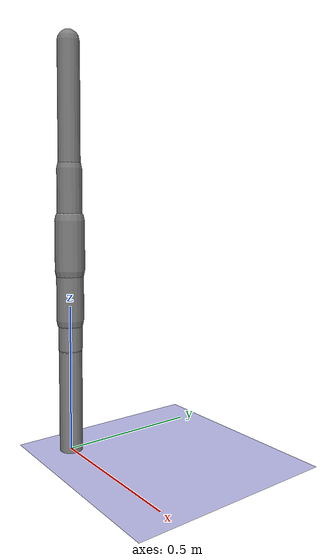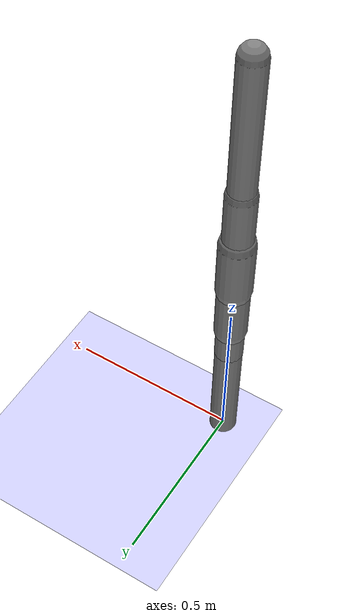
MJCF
<?xml version='1.0' encoding='UTF-8'?>
<mujoco model="robot_model">
  <worldbody>
    <light name="light" pos="0 -3 10" dir="0 0.5 -1" diffuse=".8 .8 .8" specular="0.1 0.1 0.1"/>
    <geom name="floor" type="plane" size="10.0 10.0 0.1" pos="0 0 0" rgba="0.8 0.8 1 1" contype="2" conaffinity="1"/>
    <body name="limb0" pos="0 0 0">
      <geom type="capsule" fromto="0 0 0 0 0 0.6" size="0.04" density="400.0" contype="1" conaffinity="2"/>
      <site type="sphere" size="0.01" name="limb0_site0" pos="0 0 0.3147693756185692"/>
      <freejoint name="limb0_root"/>
      <body name="limb1" pos="0 0 0.3147693756185692">
        <geom type="capsule" fromto="0 0 0 0 0 0.22374799158173964" size="0.029119176085318315" density="452.1334187822219" contype="1" conaffinity="2"/>
        <site type="sphere" size="0.01" name="limb1_site0" pos="0 0 0.13959699440114137"/>
        <site type="sphere" size="0.01" name="limb1_site1" pos="0 0 0.039350103148185524"/>
        <site type="sphere" size="0.01" name="limb1_site2" pos="0 0 0.19102740956826053"/>
        <body name="limb2" pos="0 0 0.13959699440114137">
          <geom type="capsule" fromto="0 0 0 0 0 0.32331157919001374" size="0.04703069767789839" density="709.8359320414992" contype="1" conaffinity="2"/>
          <site type="sphere" size="0.01" name="limb2_site0" pos="0 0 0.17074957483882156"/>
          <body name="limb3" pos="0 0 0.17074957483882156">
            <geom type="capsule" fromto="0 0 0 0 0 0.16986396870629186" size="0.051375428870848665" density="410.9469482212125" contype="1" conaffinity="2"/>
            <joint name="joint_limb2_limb3_0" type="hinge" axis="0 1 0" range="-41.79162224515133 41.79162224515133" damping="5.0"/>
          </body>
          <joint name="joint_limb1_limb2_0" type="hinge" axis="0 1 0" range="-82.7424809592319 82.7424809592319" damping="5.0"/>
        </body>
        <body name="limb4" pos="0 0 0.039350103148185524">
          <geom type="capsule" fromto="0 0 0 0 0 0.31506302920139795" size="0.04118448157082622" density="1024.7729175917539" contype="1" conaffinity="2"/>
          <site type="sphere" size="0.01" name="limb4_site0" pos="0 0 0.31490592373299237"/>
          <body name="limb5" pos="0 0 0.31490592373299237">
            <geom type="capsule" fromto="0 0 0 0 0 0.4402786418042146" size="0.037126624599092425" density="695.124355995081" contype="1" conaffinity="2"/>
            <joint name="joint_limb4_limb5_0" type="hinge" axis="0 1 0" range="-89.42140464268066 89.42140464268066" damping="5.0"/>
          </body>
          <joint name="joint_limb1_limb4_0" type="hinge" axis="1 0 0" range="-76.57739072162552 76.57739072162552" damping="5.0"/>
        </body>
        <body name="limb6" pos="0 0 0.19102740956826053">
          <geom type="capsule" fromto="0 0 0 0 0 0.4727806644286577" size="0.03794159670294999" density="1047.9904850783728" contype="1" conaffinity="2"/>
          <site type="sphere" size="0.01" name="limb6_site0" pos="0 0 0.2278818572451243"/>
          <site type="sphere" size="0.01" name="limb6_site1" pos="0 0 0.416773953600797"/>
          <site type="sphere" size="0.01" name="limb6_site2" pos="0 0 0.23831402153776318"/>
          <body name="limb7" pos="0 0 0.2278818572451243">
            <geom type="capsule" fromto="0 0 0 0 0 0.237269018362479" size="0.043301737123174464" density="1171.6827149099079" contype="1" conaffinity="2"/>
            <joint name="joint_limb6_limb7_0" type="hinge" axis="0 0 1" range="-97.3556228309299 97.3556228309299" damping="5.0"/>
          </body>
          <body name="limb8" pos="0 0 0.416773953600797">
            <geom type="capsule" fromto="0 0 0 0 0 0.468181343672113" size="0.038154602031658345" density="1125.5913325396152" contype="1" conaffinity="2"/>
            <joint name="joint_limb6_limb8_0" type="hinge" axis="0 1 0" range="-117.88123207946751 117.88123207946751" damping="5.0"/>
          </body>
          <body name="limb9" pos="0 0 0.23831402153776318">
            <geom type="capsule" fromto="0 0 0 0 0 0.37166349185855707" size="0.03471472421033268" density="1181.8553192277445" contype="1" conaffinity="2"/>
            <joint name="joint_limb6_limb9_0" type="hinge" axis="0 0 1" range="-106.17964630106378 106.17964630106378" damping="5.0"/>
          </body>
          <joint name="joint_limb1_limb6_0" type="hinge" axis="0 1 0" range="-106.84257521657214 106.84257521657214" damping="5.0"/>
        </body>
        <joint name="joint_limb0_limb1_0" type="hinge" axis="0 1 0" range="-102.24210496044591 102.24210496044591" damping="5.0"/>
      </body>
    </body>
  </worldbody>
  <actuator>
    <position name="position_actuator_joint_limb0_limb1_0" joint="joint_limb0_limb1_0" gear="1.1777902197768442" inheritrange="1" kp="10.0"/>
    <position name="position_actuator_joint_limb1_limb2_0" joint="joint_limb1_limb2_0" gear="0.7360723872815542" inheritrange="1" kp="10.0"/>
    <position name="position_actuator_joint_limb2_limb3_0" joint="joint_limb2_limb3_0" gear="1.9227033142358656" inheritrange="1" kp="10.0"/>
    <position name="position_actuator_joint_limb1_limb4_0" joint="joint_limb1_limb4_0" gear="1.9786544527946286" inheritrange="1" kp="10.0"/>
    <position name="position_actuator_joint_limb4_limb5_0" joint="joint_limb4_limb5_0" gear="1.5342823480684475" inheritrange="1" kp="10.0"/>
    <position name="position_actuator_joint_limb1_limb6_0" joint="joint_limb1_limb6_0" gear="1.4252429185165156" inheritrange="1" kp="10.0"/>
    <position name="position_actuator_joint_limb6_limb7_0" joint="joint_limb6_limb7_0" gear="1.2514069354827302" inheritrange="1" kp="10.0"/>
    <position name="position_actuator_joint_limb6_limb8_0" joint="joint_limb6_limb8_0" gear="1.5805405007043722" inheritrange="1" kp="10.0"/>
    <position name="position_actuator_joint_limb6_limb9_0" joint="joint_limb6_limb9_0" gear="0.7597488265685853" inheritrange="1" kp="10.0"/>
  </actuator>
</mujoco>
